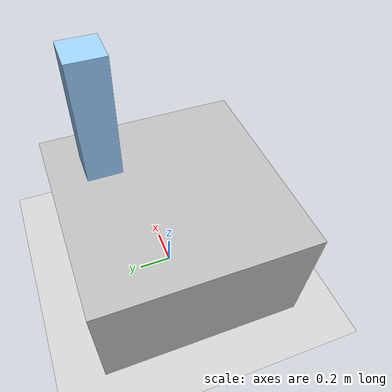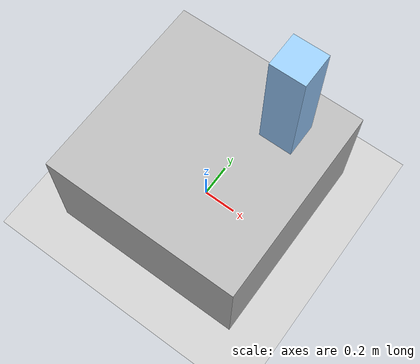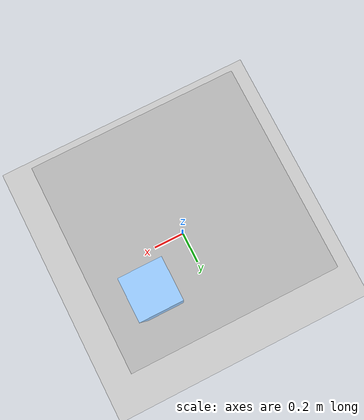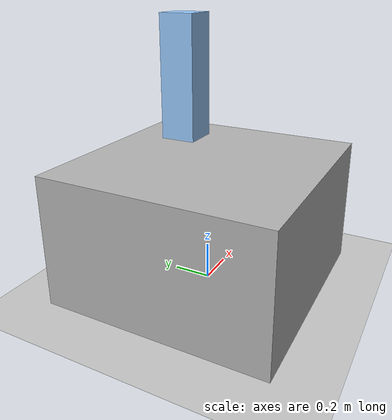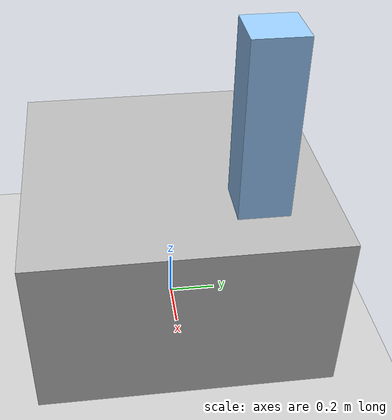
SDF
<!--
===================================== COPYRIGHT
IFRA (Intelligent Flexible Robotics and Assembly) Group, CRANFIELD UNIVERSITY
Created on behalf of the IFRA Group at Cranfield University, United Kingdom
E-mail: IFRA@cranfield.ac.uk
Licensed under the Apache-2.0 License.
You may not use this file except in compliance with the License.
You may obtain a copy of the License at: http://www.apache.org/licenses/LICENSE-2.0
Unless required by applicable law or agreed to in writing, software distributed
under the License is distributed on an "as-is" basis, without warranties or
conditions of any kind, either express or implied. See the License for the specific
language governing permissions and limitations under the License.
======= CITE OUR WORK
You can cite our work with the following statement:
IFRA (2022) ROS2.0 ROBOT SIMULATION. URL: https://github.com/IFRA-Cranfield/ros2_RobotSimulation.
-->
<?xml version="1.0" ?>

<sdf version="1.4">

  <world name="default">
    <include>
      <uri>model://ground_plane</uri>
    </include>

    <include>
      <uri>model://sun</uri>
    </include>

    <scene>
      <shadows>0</shadows>
    </scene>

    <!-- GAZEBO PLUGINS: -->
    <!-- The following plugins must be activated for the ros2_grasping to effectively work: -->

    <plugin name="gazebo_ros_state" filename="libgazebo_ros_state.so">
      <ros>
        <namespace>/ros2_grasp</namespace>
        <argument>model_states:=model_states</argument>
        <argument>link_states:=link_states</argument>
      </ros>
      <update_rate>1.0</update_rate>
    </plugin>

    <plugin name="gazebo_ros_properties" filename="libgazebo_ros_properties.so">
      <ros>
        <namespace>/ros2_grasp</namespace>
      </ros>
    </plugin>

    <!-- 加桌子-->
    <model name="table">
      <static>true</static>
      <pose>0 0 0.35 0 0 0</pose>

      <link name="link">
        <collision name="collision">
          <geometry>
            <box>
              <size>1.2 1.2 0.7</size>
            </box>
          </geometry>
          <surface>
            <friction>
              <ode>
                <mu>2.0</mu>
                <mu2>2.0</mu2>
              </ode>
            </friction>
            <contact>
              <ode>
                <kp>1000000.0</kp>
                <kd>100.0</kd>
              </ode>
            </contact>
          </surface>
        </collision>

        <visual name="visual">
          <geometry>
            <box>
              <size>1.2 1.2 0.7</size>
            </box>
          </geometry>
        </visual>
      </link>
    </model>

    <!-- 加障碍-->
    <model name="box_obstacle">
      <static>true</static>
      <pose>0.3 0.3 1.05 0 0 0</pose>

      <link name="link">
        <collision name="collision">
          <geometry>
            <box>
              <size>0.2 0.2 0.7</size>
            </box>
          </geometry>
        </collision>

        <visual name="visual">
          <geometry>
            <box>
              <size>0.2 0.2 0.7</size>
            </box>
          </geometry>
          <material>
            <ambient>0.5 0.7 1.0 1.0</ambient>
            <diffuse>0.6 0.8 1.0 1.0</diffuse>
            <specular>0.3 0.3 0.4 1.0</specular>
          </material>
        </visual>
      </link>
    </model>

    <!-- 加方块-->

  </world>
</sdf>
